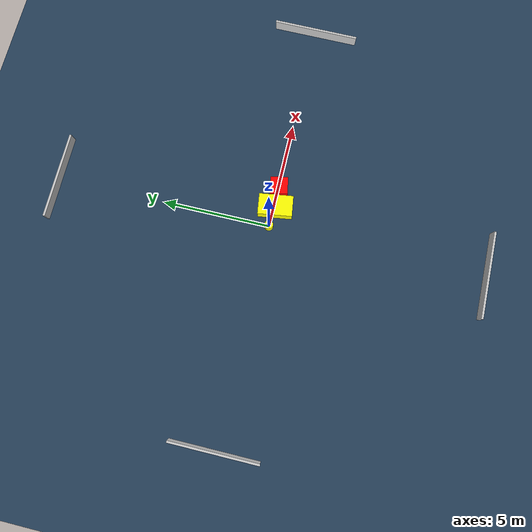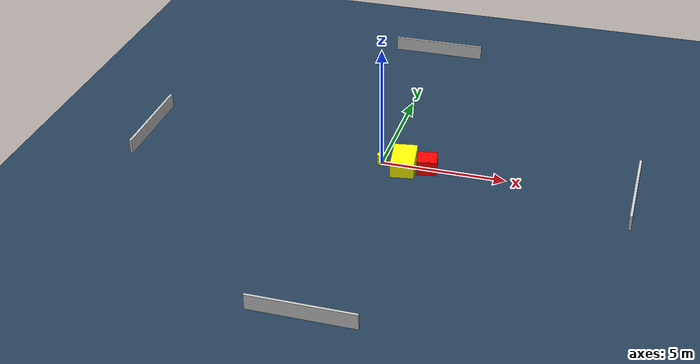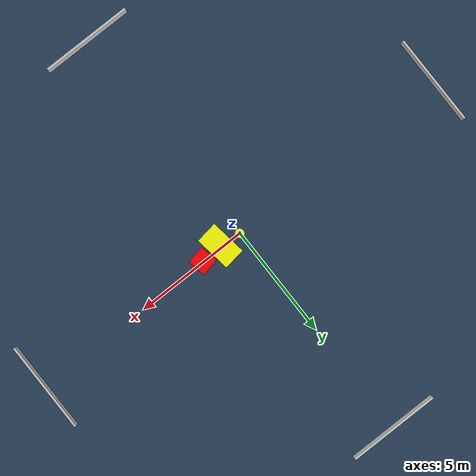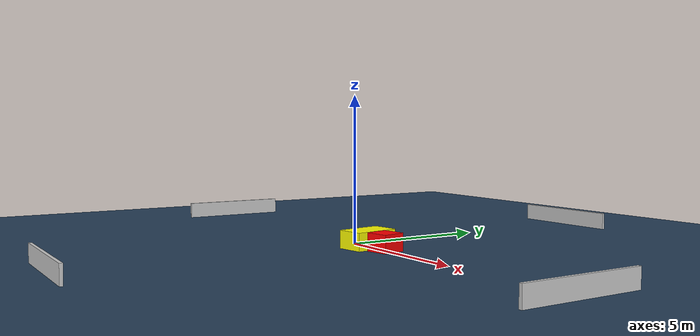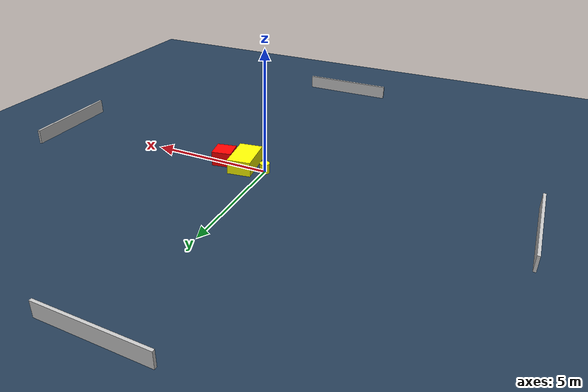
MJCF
<?xml version="1.0" ?>
<mujoco model="generated_environment">
  <option timestep="0.01" integrator="RK4" cone="elliptic"/>
  <default>
    <geom density="1"/>
  </default>
  <asset>
    <texture builtin="gradient" height="3072" name="skybox" rgb1="0.3 0.5 0.7" rgb2="0 0 0" type="skybox" width="512"/>
    <texture builtin="checker" height="300" name="groundplane" rgb1="0.2 0.3 0.4" rgb2="0.1 0.2 0.3" type="2d" width="300"/>
    <material name="groundplane" reflectance="0.2" texrepeat="5 5" texture="groundplane"/>
  </asset>
  <worldbody>
    <light dir="0 0 -1" directional="true" pos="0 0 1.5"/>
    <geom condim="3" friction="0.5 0.005 0.001" material="groundplane" name="floor" pos="0 0 0" size="0 0 0.05" type="plane"/>
    <body name="walls">
      <geom name="wall_1" condim="4" pos="-10.0 0.0 0.3" rgba="0.800000011920929 0.800000011920929 0.800000011920929 1.0" size="0.05 2.0 0.3" type="box"/>
      <geom name="wall_2" condim="4" pos="10.0 0.0 0.3" rgba="0.800000011920929 0.800000011920929 0.800000011920929 1.0" size="0.05 2.0 0.3" type="box"/>
      <geom name="wall_3" condim="4" pos="0.0 -10.0 0.3" rgba="0.800000011920929 0.800000011920929 0.800000011920929 1.0" size="2.0 0.05 0.3" type="box"/>
      <geom name="wall_4" condim="4" pos="0.0 10.0 0.3" rgba="0.800000011920929 0.800000011920929 0.800000011920929 1.0" size="2.0 0.05 0.3" type="box"/>
    </body>
    <body name="robot">
      <joint name="joint_x" type="slide" pos="0 0 0" axis="1 0 0"/>
      <joint name="joint_y" type="slide" pos="0 0 0" axis="0 1 0"/>
      <geom name="robot" type="cylinder" pos="0.0 0.0 0.2" size="0.2 0.2 0.0" mass="5.0" friction="1.0 0.005 0.0001" condim="4" rgba="1.0 1.0 0.0 1.0"/>
    </body>
    <body name="obstacle_1_movable">
      <geom name="obstacle_1_movable" condim="4" pos="0.9267696165089372 -0.08778950623527593 0.3" euler="0 0 278.2472866577525" friction="0.0 0.005 0.001" rgba="1.0 1.0 0.0 1.0" size="0.7854358347493284 0.478410728682447 0.3" type="box" mass="0.1"/>
      <joint type="free"/>
    </body>
    <body name="obstacle_2_static">
      <geom name="obstacle_2_static" condim="4" pos="1.863367407275886 -0.0391169589974408 0.3" euler="0 0 191.25009511412892" friction="0.0 0.005 0.001" rgba="1.0 0.0 0.0 1.0" size="0.4000635623668589 0.3995108822342436 0.3" type="box"/>
    </body>
  </worldbody>
  <actuator>
    <motor name="actuator_x" joint="joint_x" gear="1" ctrlrange="-1 1"/>
    <motor name="actuator_y" joint="joint_y" gear="1" ctrlrange="-1 1"/>
  </actuator>
</mujoco>
